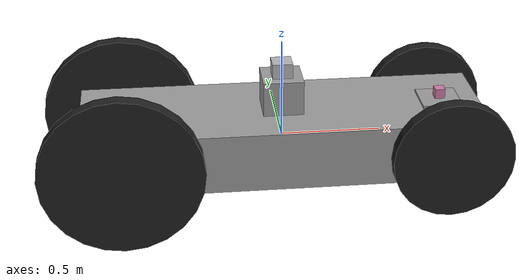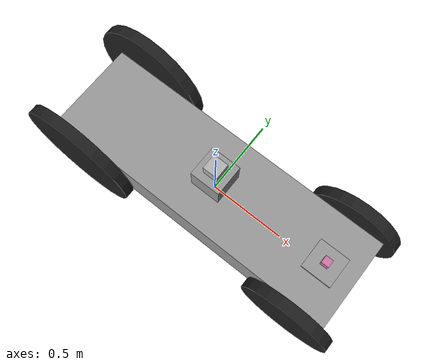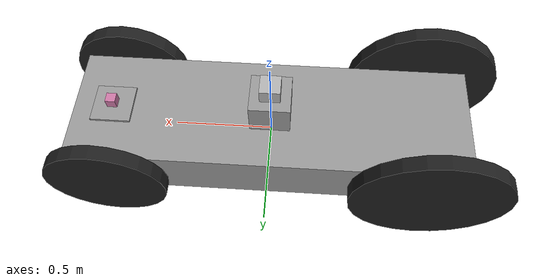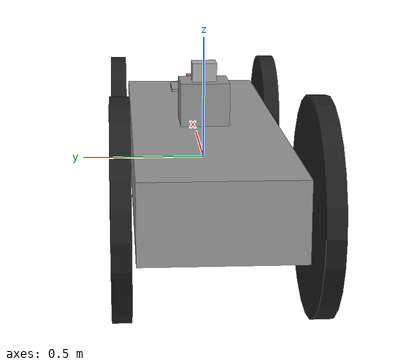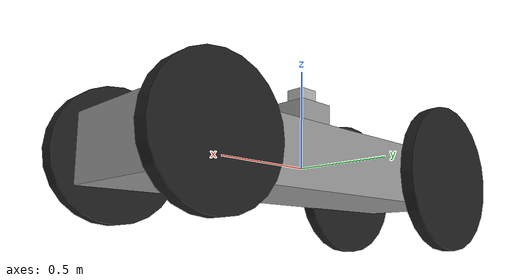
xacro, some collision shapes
<?xml version='1.0'?>

<robot name='my_robot' xmlns:xacro="http://www.ros.org/wiki/xacro">
<xacro:include filename="$(find my_robot)/urdf/my_robot.gazebo" />

	<gazebo reference='robot_base'>
		<material> Gazebo/Grey </material>
	</gazebo>

	<gazebo reference='LeftFrontWheel'>
		<material> Gazebo/FlatBlack </material>
	</gazebo>

	<gazebo reference='RightFrontWheel'>
		<material> Gazebo/FlatBlack </material>
	</gazebo>

	<gazebo reference='LeftBackWheel'>
		<material> Gazebo/FlatBlack </material>
	</gazebo>

	<gazebo reference='RightBackWheel'>
		<material> Gazebo/FlatBlack </material>
	</gazebo>

	<link name="robot_footprint"></link>

  	<joint name="robot_footprint_joint" type="fixed">
    		<origin xyz="0 0 0" rpy="0 0 0" />
    		<parent link="robot_footprint"/>
   		<child link="robot_base" />
  	</joint>

	<link name="robot_base">

	<visual name = 'robot_base_visual'>
        	<origin xyz = '0 0 0' rpy = '0 0 0' />
        	<geometry> <box size='2 0.6 0.3'/> </geometry>
   	</visual>

	<visual name = 'robot_LidarPlate'>
        	<origin xyz = '0 0 0.15' rpy = '0 0 0' />
        	<geometry> <box size='0.2 0.2 0.35'/> </geometry>
   	</visual>

   	<visual name = 'robot_CameraPlate'>
        	<origin xyz = '0.8 0 0.15' rpy = '0 0 0' />
        	<geometry> <box size='0.2 0.2 0.025'/> </geometry>
   	</visual>

    	<collision name = 'collision' >
        	<origin xyz = '0 0 0' rpy = '0 0 0' />
        	<geometry> <box size='2 0.6 0.3'/> </geometry>
    	</collision>

    	<inertial>
        	<origin xyz = '0 0 0' rpy='0 0 0' />
        	<mass value='15'/>
        	<inertia ixx="0.1" ixy="0" ixz="0" iyy="0.1" iyz="0" izz="0.1"/>
    	</inertial>

    </link>

    <link name="LeftFrontWheel">

    	<visual name='LeftFrontWheel_visual'>
        	<origin xyz = '0 0 0' rpy = '0 1.5707 1.5707' />
        	<geometry> <cylinder radius='0.3' length='0.07'/> </geometry>
    	</visual>

        <collision name = 'collision'>
        	<origin xyz = '0 0 0' rpy = '1.5707 1.5707 0' />
        	<geometry> <cylinder radius='0.3' length='0.07'/> </geometry>
        </collision>

        <inertial>
        	<origin xyz = '0 0 0' rpy='0 0 0' />
        	<mass value='5' />
        	<inertia ixx="0.1" ixy="0" ixz="0" iyy="0.1" iyz="0" izz="0.1" />
        </inertial>

    </link>

    <link name="RightFrontWheel">

    	<visual name='RightFrontWheel_visual'>
        	<origin xyz = '0 0 0' rpy = '1.5707 1.5707 0' />
        	<geometry> <cylinder radius='0.3' length='0.07'/> </geometry>
    	</visual>

        <collision name = 'collision'>
        	<origin xyz = '0 0 0' rpy = '1.5707 1.5707 0' />
        	<geometry> <cylinder radius='0.3' length='0.07'/> </geometry>
        </collision>

        <inertial>
        	<origin xyz = '0 0 0' rpy='0 0 0' />
        	<mass value='5' />
        	<inertia ixx="0.1" ixy="0" ixz="0" iyy="0.1" iyz="0" izz="0.1" />
        </inertial>

    </link>

    <link name="LeftBackWheel">

    	<visual name='LeftBackWheel_visual'>
        	<origin xyz = '0 0 0' rpy = '1.5707 1.5707 0' />
        	<geometry> <cylinder radius='0.4' length='0.07'/> </geometry>
    	</visual>

        <collision name = 'collision'>
        	<origin xyz = '0 0 0' rpy = '1.5707 1.5707 0' />
        	<geometry> <cylinder radius='0.4' length='0.07'/> </geometry>
        </collision>

        <inertial>
        	<origin xyz = '0 0 0' rpy='0 0 0' />
        	<mass value='5' />
        	<inertia ixx="0.1" ixy="0" ixz="0" iyy="0.1" iyz="0" izz="0.1" />
        </inertial>

    </link>

    <link name="RightBackWheel">

    	<visual name='RightBackWheel_visual'>
        	<origin xyz = '0 0 0' rpy = '1.5707 1.5707 0' />
        	<geometry> <cylinder radius='0.4' length='0.07'/> </geometry>
    	</visual>

        <collision name = 'collision'>
        	<origin xyz = '0 0 0' rpy = '1.5707 1.5707 0' />
        	<geometry> <cylinder radius='0.4' length='0.07'/> </geometry>
        </collision>

        <inertial>
        	<origin xyz = '0 0 0' rpy='0 0 0' />
        	<mass value='5' />
        	<inertia ixx="0.1" ixy="0" ixz="0" iyy="0.1" iyz="0" izz="0.1" />
        </inertial>

    </link>

    <link name='camera'>

	<visual name='camera_visual'>
		<origin xyz ='0 0 0' rpy='0 0 0' />
		<geometry> <box size='0.05 .05 .05'/> </geometry>
	</visual>

	<collision name = 'collision'>
		<origin xyz ='0 0 0' rpy='0 0 0' />
		<geometry> <box size='0.05 0.05 0.05'/> </geometry>
	</collision>

	<inertial>
		<origin xyz='0.05 0.05 0.05' rpy = '0 0 0' />
		<mass value='0.1'/>
		<inertia ixx="1e-6" ixy="0" ixz="0" iyy="1e-6" iyz="0" izz="1e-6" />
        </inertial>

    </link>

    <link name='hokuyo'>

	<visual name='hokuyo_visual'>
		<origin xyz ='0 0 0' rpy='0 0 0' />
		<geometry> <mesh filename="package://my_robot/meshes/hokuyo.dae"/> </geometry>
	</visual>

	<collision name = 'collision'>
		<origin xyz ='0 0 0' rpy='0 0 0' />
		<geometry> <box size='0.1 0.1 0.1'/> </geometry>
	</collision>

	<inertial>
		<origin xyz='0.0 0.0 0.0' rpy = '0 0 0' />
		<mass value='1e-5'/>
		<inertia ixx="1e-6" ixy="0" ixz="0" iyy="1e-6" iyz="0" izz="1e-6" />
        </inertial>

    </link>

    <joint name="joint_LeftFrontWheel" type="revolute">
    	<origin xyz='0.8 0.35 0' rpy='0 0 0' />
        <parent link='robot_base'/>
        <child link='LeftFrontWheel'/>
	<limit lower='-3.14' upper='3.14' effort='10' velocity='5'/>
        <axis xyz='0 -1 0'/>
    </joint>

    <joint name="joint_RightFrontWheel" type="revolute">
    	<origin xyz='0.8 -0.35 0' rpy='0 0 0' />
        <parent link='robot_base'/>
        <child link='RightFrontWheel'/>
	<limit lower='-3.14' upper='3.14' effort='10' velocity='5'/>
        <axis xyz='0 1 0'/>
    </joint>

    <joint name="joint_LeftBackWheel" type="continuous">
    	<origin xyz='-0.8 0.35 0' rpy='0 0 0' />
        <parent link='robot_base'/>
        <child link='LeftBackWheel'/>
		<limit effort="10000" velocity="1000"/>
    	<dynamics damping="1.0" friction="1.0"/>
        <axis xyz='0 -1 0'/>
    </joint>

    <joint name="joint_RightBackWheel" type="continuous">
    	<origin xyz='-0.8 -0.35 0' rpy='0 0 0' />
        <parent link='robot_base'/>
        <child link='RightBackWheel'/>
	    <limit effort="10000" velocity="1000"/>
        <dynamics damping="1.0" friction="1.0"/>
        <axis xyz='0 1 0'/>
    </joint>

    <joint name ='camera_joint' type = 'fixed'>
	<origin xyz='0.8 0 0.19' rpy='0 0 0' />
	<parent link='robot_base'/>
	<child link='camera' />
	<axis xyz='0 1 0' />
    </joint>

    <joint name ='hokuyo_joint' type = 'fixed'>
	<origin xyz='0 0 0.35' rpy='0 0 0' />
	<parent link='robot_base'/>
	<child link='hokuyo' />
	<axis xyz='0 1 0' />
    </joint>

</robot>
